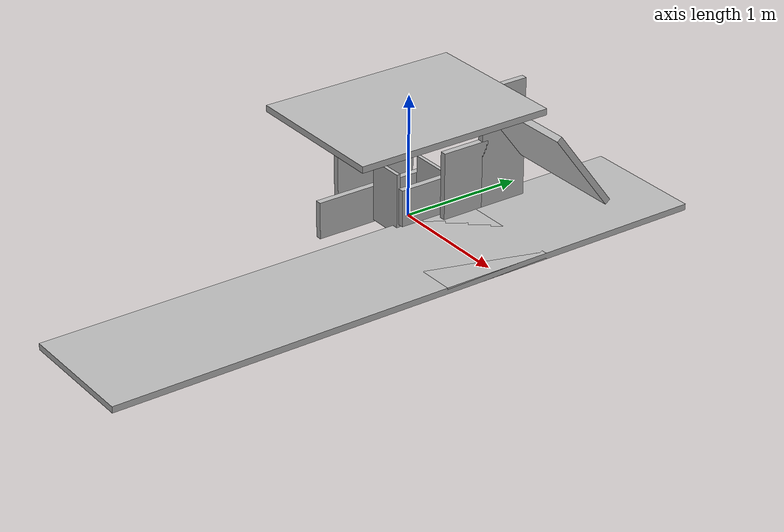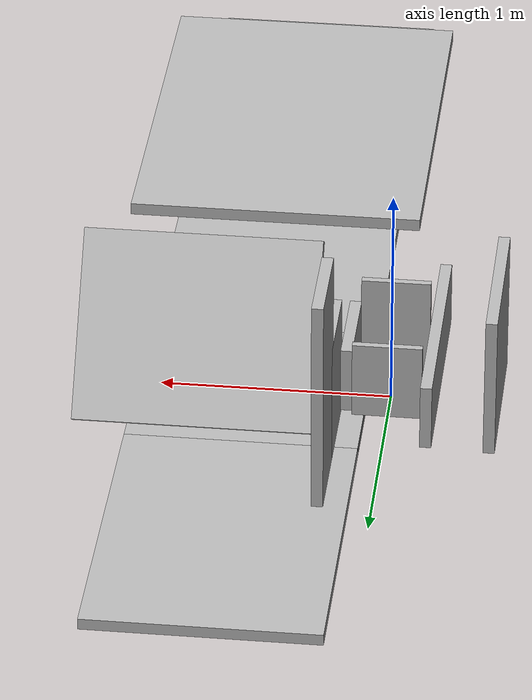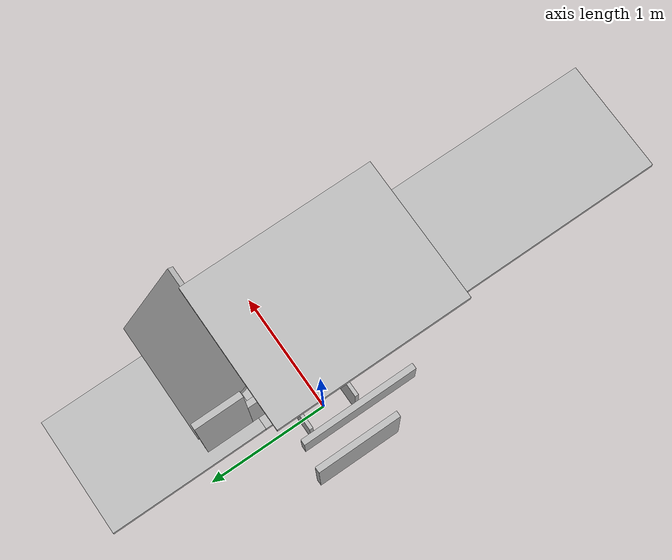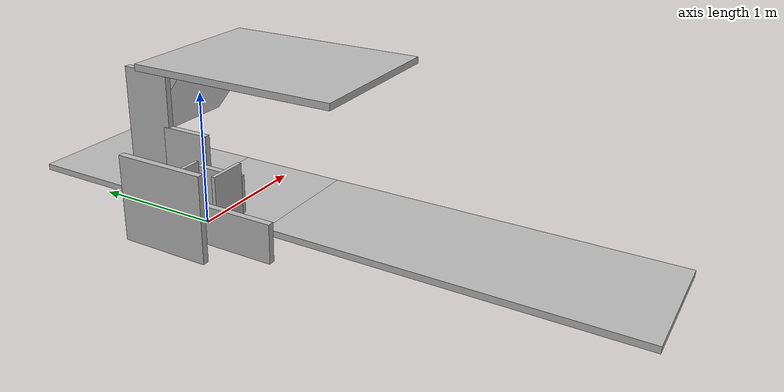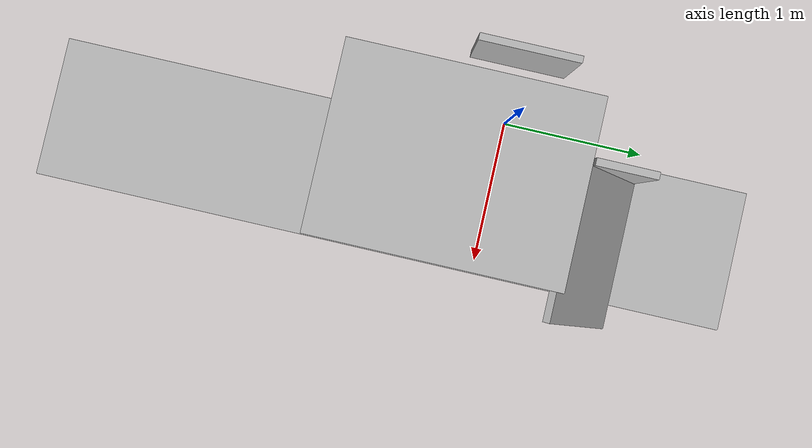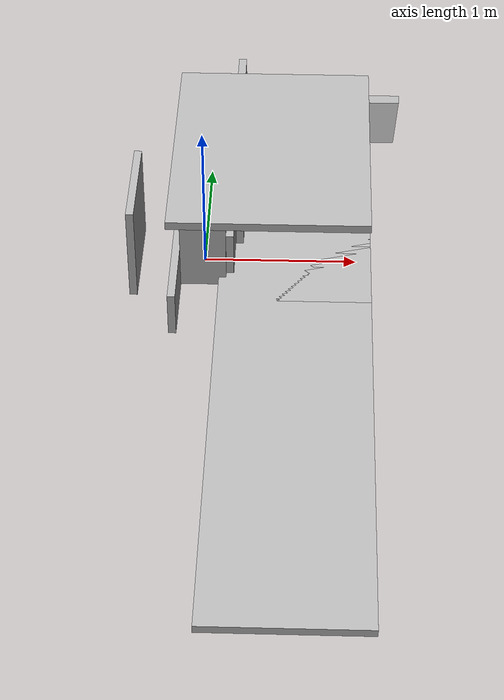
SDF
<?xml version="1.0" ?>
<sdf version="1.4">
  <!-- We use a custom world for the panda + softhand. -->
  <!-- One can change this world to his needs or use another one. -->

  <world name="default">

	<!-- box (like a robot base) -->

	<!-- box (like a table) -->
    <model name="table">
			<pose> 0.6 0 0 0 0 0</pose>
			<static>true</static>
			<link name='linkTable'>
				<pose>0 0 0 0 0 0</pose>

				<collision name="my_collisionTable">
		 			<pose>0 0 0 0 0 0</pose>
					<geometry>
		        <box>
		          <size>1 0.9 0.05</size>
		        </box>
		      </geometry>
	      </collision>

				<visual name="my_visualTable">
					<geometry>
		        <box>
					<size>1 0.9 0.05</size>
		        </box>
		      </geometry>
	      </visual>

				<self_collide>0</self_collide>
				<gravity>1</gravity>
			</link>
    </model>

	<model name="tableright">
			<pose> 0.6 -0.7 0 0 0 0</pose>
			<static>true</static>
			<link name='linkTableright'>
				<pose>0 0 0 0 0 0</pose>

				<collision name="my_collisionTableright">
		 			<pose>0 0 0 0 0 0</pose>
					<geometry>
		        <box>
		          <size>1 5 0.05</size>
		        </box>
		      </geometry>
	      </collision>

				<visual name="my_visualTableright">
					<geometry>
		        <box>
					<size>1 5 0.05</size>
		        </box>
		      </geometry>
	      </visual>

				<self_collide>0</self_collide>
				<gravity>1</gravity>
			</link>
    </model>

	<!-- box (like a wall on the left of the robot) -->

    <!-- box (like a little wall on the left of the robot) -->
    <model name="wall_little_left">

			<pose>0.0 0.20 0.215 0 0 0 </pose>
			<static>true</static>
			<link name='linkWallLittleLeft'>
				<pose>0 0 0 0 0 0</pose>

				<collision name="my_collisionWallLittleLeft">
		 			<pose>0 0 0 0 0 0</pose>
					<geometry>
		        <box>
		          <size>0.3 0.03 0.35</size>
		        </box>
		            </geometry>
	            </collision>

				<visual name="my_visualWallLittleLeft">
					<geometry>
		        <box>
					<size>0.3 0.03 0.35</size>
		        </box>
		           </geometry>
	      </visual>

				<self_collide>0</self_collide>
				<gravity>1</gravity>
			</link>
    </model>

	<!-- box (like a wall on the right of the robot) -->

    <!-- box (like a little wall on the right of the robot) -->
    <model name="wall_little_right">

			<pose>0.0 -0.20 0.215 0 0 0 </pose>
			<static>true</static>
			<link name='linkWallLittleRight'>
				<pose>0 0 0 0 0 0</pose>

				<collision name="my_collisionWallLittleRight">
		 			<pose>0 0 0 0 0 0</pose>
					<geometry>
		        <box>
		          <size>0.3 0.03 0.5</size>
		        </box>
		            </geometry>
	            </collision>

				<visual name="my_visualWallLittleRight">
					<geometry>
		        <box>
					<size>0.3 0.03 0.5</size>
		        </box>
		           </geometry>
	      </visual>

				<self_collide>0</self_collide>
				<gravity>1</gravity>
			</link>
    </model>

	<!-- box (like a roof) -->
    <model name="roof">
			<pose> 0.45 -0.35 1.15 0 0 0</pose>
			<static>true</static>
			<link name='linkRoof'>
				<pose>0 0 0 0 0 0</pose>

				<collision name="my_collisionRoof">
		 			<pose>0 0 0 0 0 0</pose>
					<geometry>
		        <box>
		          <size>1.2 1.6 0.05</size>
		        </box>
		      </geometry>
	      </collision>

				<visual name="my_visualRoof">
					<geometry>
		        <box>
					<size>1.2 1.6 0.05</size>
		        </box>
		      </geometry>
	      </visual>

				<self_collide>0</self_collide>
				<gravity>1</gravity>
			</link>
    </model>

	<!-- box (like a wall behind) -->
    <model name="wall_behind">
			<pose> -0.175 -0.2 0.10 0 0 0</pose>
			<static>true</static>
			<link name='linkWallBehind'>
				<pose>0 0 0 0 0 0</pose>

				<collision name="my_collisionWallBehind">
		 			<pose>0 0 0 0 0 0</pose>
					<geometry>
		        <box>
		          <size>0.05 1 0.3</size>
		        </box>
		      </geometry>
	      </collision>

				<visual name="my_visualWallBehind">
					<geometry>
		        <box>
					<size>0.05 1 0.3</size>
		        </box>
		      </geometry>
	      </visual>

				<self_collide>0</self_collide>
				<gravity>1</gravity>
			</link>
    </model>

    <!-- box (like a little wall in front of the robot) -->

	<model name="wall_front">
			<pose> 0.175 0 0.2 0 0 0</pose>
			<static>true</static>
			<link name='linkWallFront'>
				<pose>0 0 0 0 0 0</pose>

				<collision name="my_collisionWallFront">
		 			<pose>0 0 0 0 0 0</pose>
					<geometry>
		        <box>
		          <size>0.05 0.4 0.3</size>
		        </box>
		      </geometry>
	      </collision>

				<visual name="my_visualWallFront">
					<geometry>
		        <box>
					<size>0.05 0.4 0.3</size>
		        </box>
		      </geometry>
	      </visual>

				<self_collide>0</self_collide>
				<gravity>1</gravity>
			</link>
    </model>

	<!-- box (like a wall on the left-scaffalatura) -->
    <model name="wall_left2">
			<pose> 0.75 0.65 0.7 -2.5 0 0</pose>
			<static>true</static>
			<link name='wall_left2'>
				<pose>0 0 0 0 0 0</pose>

				<collision name="my_collisionWallleft2">
		 			<pose>0 0 0 0 0 0</pose>
					<geometry>
		        <box>
		          <size>1 0.05 0.8</size>
		        </box>
		      </geometry>
	      </collision>

				<visual name="my_visualWallleft2">
					<geometry>
		        <box>
					<size>1 0.05 0.8</size>
		        </box>
		      </geometry>
	      </visual>

				<self_collide>0</self_collide>
				<gravity>1</gravity>
			</link>
    </model>

	<!-- box (hand-tool) -->
    <model name="handtool">

			<pose>0.225 0.7 0.5 0 0 0 </pose>
			<static>true</static>
			<link name='linkhandtool'>
				<pose>0 0 0 0 0 0</pose>

				<collision name="my_collisionhandtool">
		 			<pose>0 0 0 0 0 0</pose>
					<geometry>
		        <box>
		          <size>0.05 0.4 1</size>
		        </box>
		            </geometry>
	            </collision>

				<visual name="my_visualhandtool">
					<geometry>
		        <box>
					<size>0.05 0.4 1</size>
		        </box>
		      </geometry>
	      </visual>

				<self_collide>0</self_collide>
				<gravity>1</gravity>
			</link>
    </model>

	<!-- box (hand-tool-little) -->
    <model name="handtool_little">

			<pose>0.225 0.35 0.3 0 0 0 </pose>
			<static>true</static>
			<link name='linkhandtool'>
				<pose>0 0 0 0 0 0</pose>

				<collision name="my_collisionhandtoollittle">
		 			<pose>0 0 0 0 0 0</pose>
					<geometry>
		        <box>
		          <size>0.05 0.4 0.55</size>
		        </box>
		            </geometry>
	            </collision>

				<visual name="my_visualhandtoollittle">
					<geometry>
		        <box>
					<size>0.05 0.4 0.55</size>
		        </box>
		      </geometry>
	      </visual>

				<self_collide>0</self_collide>
				<gravity>1</gravity>
			</link>
    </model>

	<!-- box (camera_wall) -->
    <model name="camera">

			<pose>-0.45 0 0.3 0 0 0 </pose>
			<static>true</static>
			<link name='linkcamera'>
				<pose>0 0 0 0 0 0</pose>

				<collision name="my_collisionlinkcamera">
		 			<pose>0 0 0 0 0 0</pose>
					<geometry>
		        <box>
		          <size>0.05 0.7 0.65</size>
		        </box>
		            </geometry>
	            </collision>

				<visual name="my_collisionlinkcamera">
					<geometry>
		        <box>
					<size>0.05 0.7 0.65</size>
		        </box>
		      </geometry>
	      </visual>

				<self_collide>0</self_collide>
				<gravity>1</gravity>
			</link>
    </model>

  </world>

</sdf>
